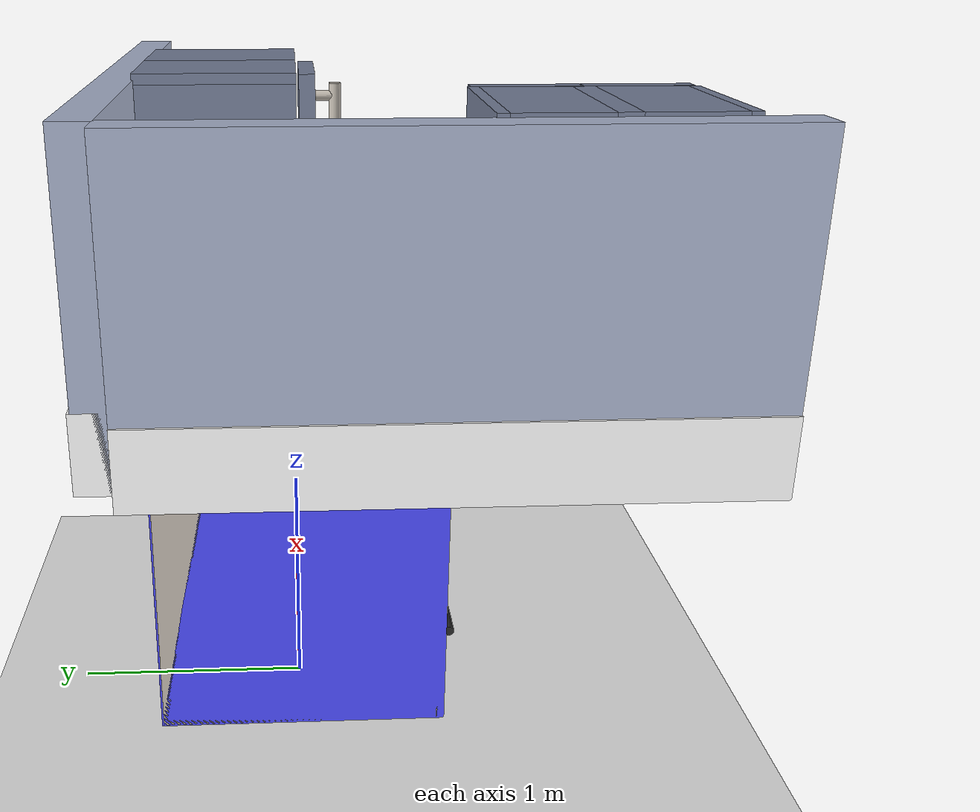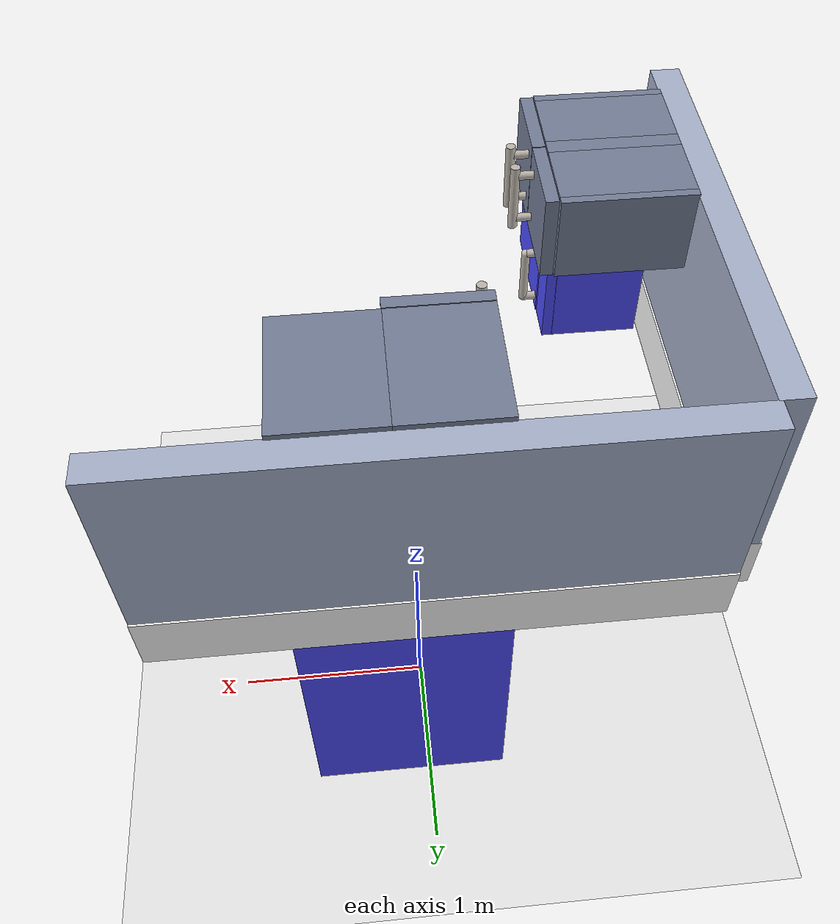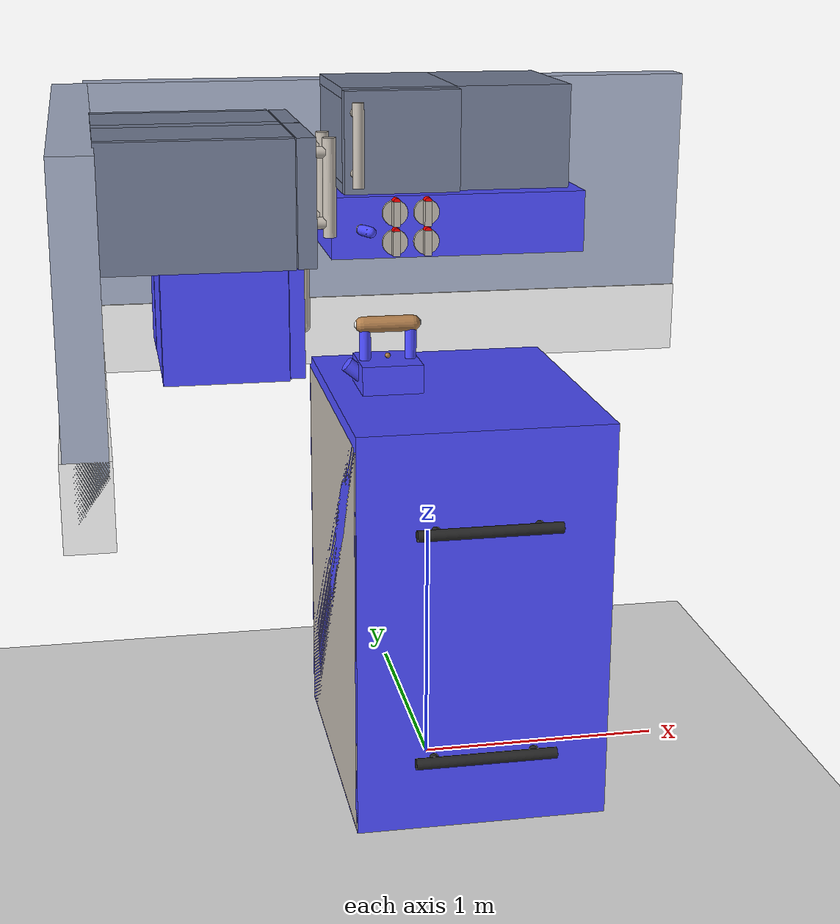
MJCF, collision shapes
<mujoco model="kitchen">
    <compiler angle="radian" inertiafromgeom='auto' inertiagrouprange='4 5'/>
    <include file='../scenes/basic_scene.xml'/>
    <include file="../kitchen/assets/oven_asset.xml"/>
    <include file="../kitchen/assets/counters_asset.xml"/>
    <include file="../kitchen/assets/backwall_asset.xml"/>
    <include file="../kitchen/assets/slidecabinet_asset.xml"/>
    <include file="../kitchen/assets/hingecabinet_asset.xml"/>
    <include file="../kitchen/assets/microwave_asset.xml"/>
    <include file="../kitchen/assets/kettle_asset.xml"/>
    <worldbody>
        <body name="kitchen" pos="0 0 0">
            <body name="oven" pos="0 0 0">
                <include file="../kitchen/assets/oven_chain.xml"/>
            </body>
            <body name="backwall" pos="0 0 0">
                <include file="../kitchen/assets/backwall_chain.xml"/>
            </body>
            <body name="slidecabinet" pos="0.098 0.28 2.61">
                <include file="../kitchen/assets/slidecabinet_chain.xml"/>
            </body>
            <body name="hingecabinet1" pos="-1.0 -1.0 2.6" euler="0 0 1.57">
                <include file="../kitchen/assets/hingecabinet_chain.xml"/>
            </body>
            <body name="microwave" pos="-0.892 -0.96 2.025" euler="0 0 1.57">
                <include file="../kitchen/assets/microwave_chain.xml"/>
            </body>
        </body>
        <body name="kettle" pos="-0.169 0 1.626">
            <freejoint/>
            <include file="../kitchen/assets/kettle_chain.xml"/>
        </body>
    </worldbody>

</mujoco>

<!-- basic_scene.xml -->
<mujocoinclude>
    <asset>
        <texture name="skybox" type="skybox" builtin="gradient" rgb1=".08 .09 .10" rgb2="0 0 0"
               width="800" height="800" mark="random" markrgb=".8 .8 .8"/>

        <texture name="texplane" type="2d" height="1" width="1" file="../scenes/textures/white_marble_tile2.png" />
        <material name='MatPlane' reflectance='0.05' texture="texplane" texrepeat="4 4" texuniform="true"/>
    </asset>

    <visual>
        <quality shadowsize="4048"/>
    </visual>

    <worldbody>
        <light directional='true' diffuse='.3 .3 .3' specular='0.3 0.3 0.3' pos='-1 -1 1' dir='1 1 -1'/>
        <light directional='true' diffuse='.3 .3 .3' specular='0.3 0.3 0.3' pos='1 -1 1' dir='-1 1 -1'/>
        <light directional='true' diffuse='.3 .3 .3' specular='0.3 0.3 0.3' pos='0 1 1' dir='0 -1 -1'/>
        <geom name='floor' pos='0 0 0' size='5 5 .1' conaffinity='1' contype='1' type='plane' material="MatPlane" condim='3'/>
        <site name='xaxis' pos='.5 0 0' size='.005 .5' type='capsule' rgba='1 0 0 .25' euler='0 1.57 0' group='3'/>
        <site name='yaxis' pos='0 .5 0' size='.005 .5' type='capsule' rgba='0 1 0 .25' euler='1.57 0 0' group='3'/>
    </worldbody>
</mujocoinclude>

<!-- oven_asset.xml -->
<mujocoinclude>

    <compiler inertiafromgeom="auto" inertiagrouprange="4 4" angle="radian"/>

    <asset>
        <mesh file="../kitchen/meshes/hood.stl" name="hood"/>
        <mesh file="../kitchen/meshes/lightswitch.stl" name="lightswitch"/>
        <mesh file="../kitchen/meshes/lightswitchbase.stl" name="lightswitchbase"/>
        <mesh file="../kitchen/meshes/knob.stl" name="knob"/>
        <mesh file="../kitchen/meshes/stoverim.stl" name="stoverim"/>
        <mesh file="../kitchen/meshes/burnerplate.stl" name="burnerplate"/>
        <mesh file="../kitchen/meshes/ovenhandle.stl" name="ovenhandle"/>
        <mesh file="../kitchen/meshes/oven.stl" name="oven"/>
        <mesh file="../kitchen/meshes/oventop.stl" name="oventop"/>
        <mesh file="../kitchen/meshes/ovenwindow.stl" name="ovenwindow"/>

        <texture name="T_oven_wood" type="cube" height="1" width="1" file="../kitchen/textures/wood1.png"/>
        <texture name="T_oven_metal" type="cube" height="1" width="1" file="../kitchen/textures/metal1.png"/>

        <material name="oven_wood" texture="T_oven_wood" texrepeat="3 3" reflectance="0.7" shininess=".4" texuniform="false"/>
        <material name="oven_metal" rgba="1 1 1 1" texture="T_oven_metal" texrepeat="3 3" reflectance="1" shininess="1" texuniform="false"/>
        <material name="oven_black" rgba=".15 .15 .15 1" reflectance=".2" shininess=".2" />
        <material name="oven_burner" rgba="2 0 0 1" reflectance=".2" shininess=".2" />
        <material name="oven_block" rgba=".1 .1 .1 1"/>
        <material name="oven_collision_blue" rgba="0.3 0.3 1.0 0.5" shininess="0" specular="0"/>
    </asset>
    <default>
        <default class="oven">
            <joint armature="0.001" damping="2" limited="true"/>
            <geom conaffinity="0" contype="0" group="1" material="oven_metal" type="mesh"/>
            <default class="ovenlight" >
                <light directional="false" castshadow="true" attenuation="0.03 0.03 0.03" cutoff="100" exponent="25" diffuse=".7 .65 .65" specular=".3 .3 .3"/>
            </default>
            <default class="oven_collision">
                <geom conaffinity="1" condim="3" contype="0" group="4" margin="0.001" material="oven_collision_blue" type="mesh"/>
            </default>
        </default>
    </default>

    <equality>
        <joint polycoef="0 174 0 0 0" joint1="knob_Joint_1" joint2="burner_Joint_1"/>
        <joint polycoef="0 174 0 0 0" joint1="knob_Joint_2" joint2="burner_Joint_2"/>
        <joint polycoef="0 174 0 0 0" joint1="knob_Joint_3" joint2="burner_Joint_3"/>
        <joint polycoef="0 174 0 0 0" joint1="knob_Joint_4" joint2="burner_Joint_4"/>
        <joint polycoef="0 14 0 0 0" joint1="lightswitch_joint" joint2="light_joint"/>
    </equality>

        <equality>
    </equality>
</mujocoinclude>

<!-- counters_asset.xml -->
<mujocoinclude>
    <compiler inertiafromgeom="auto" inertiagrouprange="4 4" angle="radian"/>

    <asset>
        <mesh file="../kitchen/meshes/cabinetdrawer.stl" name="cabinetdrawer"/>
        <mesh file="../kitchen/meshes/cabinethandle.stl" name="cabinethandle"/>
        <mesh file="../kitchen/meshes/cabinetbase.stl" name="cabinetbase"/>
        <mesh file="../kitchen/meshes/countertop.stl" name="countertop"/>
        <mesh file="../kitchen/meshes/faucet.stl" name="faucet"/>

        <texture name="T_counter_metal" type="cube" height="1" width="1" file="../kitchen/textures/metal1.png" />
        <texture name="T_counter_marble" type="cube" height="1" width="1" file="../kitchen/textures/marble1.png" />

        <material name="counter_metal" rgba="1 1 1 1" texture="T_counter_metal" texrepeat="3 3" reflectance=".5" shininess="1" texuniform="false" />
        <material name="counter_marble"  texture="T_counter_marble" texrepeat="1 1" reflectance=".2" shininess="1" texuniform="false" />
        <material name="counter_black" rgba=".2 .2 .2 1" reflectance="1" shininess="1"  />
        <material name="counter_blue" rgba=".46 .5 .6 1" reflectance="1" shininess="1"  />
        <material name="counter_collision_blue" rgba="0.3 0.3 1.0 0.5" shininess="0" specular="0" />

    </asset>

    <default>
        <default class="counters">
            <joint damping="2" frictionloss="2" armature=".01" limited="true"/>
            <geom conaffinity="0" contype="0" group="1" material="counter_metal" type="mesh"/>
            <default class="counter_collision">
                <geom conaffinity="1" condim="3" contype="0" group="4" margin="0.001" material="counter_collision_blue"/>
            </default>
        </default>
    </default>

</mujocoinclude>

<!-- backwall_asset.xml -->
<mujocoinclude>
    <compiler inertiafromgeom="auto" inertiagrouprange="4 4" angle="radian"/>

    <asset>
        <texture name="T_wall_marble" type="cube" height="1" width="1" file="../kitchen/textures/marble1.png"/>
        <texture name="T_wall_metal" type="cube" height="1" width="1" file="../kitchen/textures/metal1.png"/>

        <material name="wall_white" rgba="1 1 1 1" reflectance="0" shininess="0"/>
        <material name="wall_blue" rgba=".66 .7 .8 1" reflectance="0" shininess="0"/>
        <material name="wall_collision_blue" rgba="0.3 0.3 1.0 0.5" shininess="0" specular="0"/>
    </asset>
    <default>
        <default class="backwall">
            <geom conaffinity="0" contype="0" group="1" material="wall_blue"/>
            <default class="wall_collision">
                <geom conaffinity="1" condim="3" contype="0" group="4" margin="0.001" material="wall_collision_blue"/>
            </default>
        </default>
    </default>

</mujocoinclude>

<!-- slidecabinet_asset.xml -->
<mujocoinclude>

    <compiler inertiafromgeom="auto" inertiagrouprange="4 4" angle="radian"/>

    <asset>
        <texture name="T_slide_metal" type="cube" height="1" width="1" file="../kitchen/textures/metal1.png"/>

        <material name="M_slide_metal" texture="T_slide_metal" texrepeat="3 3" reflectance="0.7" shininess=".4" texuniform="false"/>
        <material name="M_slide_blue" rgba=".46 .5 .6 1" reflectance="0.7" shininess=".4"/>
        <material name="slide_collision_blue" rgba="0.3 0.3 1.0 0.5" shininess="0" specular="0"/>
    </asset>
    <default>
        <default class="slidecabinet">
            <joint damping="2" frictionloss="2" armature=".01" limited="true"/>
            <geom conaffinity="0" contype="0" group="1" material="M_slide_blue" type="mesh"/>
            <default class="slide_collision">
                <geom conaffinity="1" condim="3" contype="0" group="4" margin="0.001" material="slide_collision_blue"/>
            </default>
        </default>
    </default>

</mujocoinclude>

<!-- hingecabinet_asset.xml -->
<mujocoinclude>

    <compiler inertiafromgeom="auto" inertiagrouprange="4 4" angle="radian"/>

    <asset>
        <texture name="T_hinge_wood" type="cube" height="1" width="1" file="../kitchen/textures/wood1.png"/>
        <texture name="T_hinge_metal" type="cube" height="1" width="1" file="../kitchen/textures/metal1.png"/>

        <material name="M_hinge_wood" texture="T_hinge_wood" texrepeat="3 3" reflectance="0.7" shininess=".4" texuniform="false"/>
        <material name="M_hinge_metal" texture="T_hinge_metal" texrepeat="3 3" reflectance="0.7" shininess=".4" texuniform="false"/>
        <material name="M_hinge_blue" rgba=".46 .5 .6 1" reflectance="0.7" shininess=".4"/>
        <material name="hinge_collision_blue" rgba="0.3 0.3 1.0 0.5" shininess="0" specular="0"/>
    </asset>

    <default>
        <default class="hingecabinet">
            <joint damping="2" frictionloss="2" armature=".01" limited="true"/>
            <geom conaffinity="0" contype="0" group="1" material="M_hinge_wood" type="mesh"/>
            <default class="hinge_collision">
                <geom conaffinity="1" condim="3" contype="0" group="4" margin="0.001" material="hinge_collision_blue" solimp=".8 .9 .01" solref=".02 1"/>
            </default>
        </default>
    </default>

</mujocoinclude>

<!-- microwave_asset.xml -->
<mujocoinclude>

    <compiler inertiafromgeom="auto" inertiagrouprange="4 4" angle="radian"/>

    <asset>
        <mesh file="../kitchen/meshes/micro.stl" name="micro"/>
        <mesh file="../kitchen/meshes/microdoor.stl" name="microdoor"/>
        <mesh file="../kitchen/meshes/microbutton.stl" name="microbutton"/>
        <mesh file="../kitchen/meshes/microfeet.stl" name="microfeet"/>
        <mesh file="../kitchen/meshes/microhandle.stl" name="microhandle"/>
        <mesh file="../kitchen/meshes/microwindow.stl" name="microwindow"/>

        <texture name="T_micro_metal" type="cube" height="1" width="1" file="../kitchen/textures/metal1.png"/>

        <material name="micro_metal" rgba="1 1 1 1" texture="T_micro_metal" texrepeat="3 3" reflectance="1" shininess="1" texuniform="false"/>
        <material name="micro_black" rgba=".2 .2 .2 1" reflectance="1" shininess="1"/>
        <material name="micro_window" rgba=".4 .4 .4 .25" reflectance="1" shininess="1"/>
        <material name="micro_collision_blue" rgba="0.3 0.3 1.0 0.5" shininess="0" specular="0"/>
    </asset>

    <default>
        <default class="microwave">
            <joint damping="2" frictionloss="2" armature=".01" limited="true"/>
            <geom conaffinity="0" contype="0" group="1" material="micro_black" type="mesh"/>
            <default class="micro_collision">
                <geom conaffinity="1" condim="3" contype="0" group="4" margin="0.001" material="micro_collision_blue" solimp=".8 .9 .01" solref=".02 1"/>
            </default>
        </default>
    </default>

</mujocoinclude>

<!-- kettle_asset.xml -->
<mujocoinclude>
    <compiler inertiafromgeom="auto" inertiagrouprange="4 4" angle="radian"/>

    <asset>
        <mesh file="../kitchen/meshes/kettle.stl" name="kettle"/>
        <mesh file="../kitchen/meshes/kettlehandle.stl" name="kettlehandle"/>

        <texture name="T_kettle_metal" type="cube" height="1" width="1" file="../kitchen/textures/metal1.png" />
        <texture name="T_kettle_wood" type="cube" height="1" width="1" file="../kitchen/textures/wood1.png" />

        <material name="kettle_wood" rgba="1 1 1 1" texture="T_kettle_wood" texrepeat="3 3" reflectance="1" shininess="1" texuniform="false" />
        <material name="kettle_metal" rgba="1 1 1 1" texture="T_kettle_metal" texrepeat="3 3" reflectance="1" shininess="1" texuniform="false" />
        <material name="kettle_white" rgba=".9 .9 .9 1" reflectance="1" shininess="1" />
        <material name="kettle_collision_blue" rgba="0.3 0.3 1.0 0.5" shininess="0" specular="0" />
    </asset>
    <default class="kettle">
        <joint damping="2" frictionloss="2" armature=".01" limited="true" />
        <geom conaffinity="0" contype="0" group="1" material="kettle_white" type="mesh"/>
        <default class="kettle_collision">
            <geom conaffinity="1" condim="4" contype="1" group="4" margin="0.001" material="kettle_collision_blue" solimp=".8 .9 .01" solref=".02 1" type="mesh"/>
        </default>
    </default>
</mujocoinclude>

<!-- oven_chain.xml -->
<mujocoinclude>

    <light class="ovenlight" name="ovenlight" pos="0 .2 2.25" dir="0 -.02 -.1" attenuation="0.05 0.05 0.05" cutoff="75" diffuse=".7 .65 .65" specular=".3 .3 .3"/>

    <body name="ovenroot" childclass="oven" pos="0.115 -0.2921 0.9834">
        <geom material="oven_black" mesh="burnerplate" pos="-0.24 -0.119 0.629"/>
        <geom material="oven_black" mesh="burnerplate" pos="-0.237 0.322 0.629"/>
        <geom material="oven_black" mesh="burnerplate" pos="0.204 0.322 0.629"/>
        <geom material="oven_black" mesh="burnerplate" pos="0.206 -0.119 0.629"/>
        <geom material="oven_black" euler="1.57 0 0" pos="-.215 -0.36 -0.682" size="0.018 0.03" type="cylinder"/>
        <geom material="oven_black" euler="1.57 0 0" pos=".184 -0.36 -0.682" size="0.018 0.03" type="cylinder"/>
        <geom material="oven_black" euler="0 1.57 0" pos="-0.015 -0.39 -0.682" size="0.022 0.28" type="cylinder"/>
        <geom material="oven_black" euler="1.57 0 0" pos="-.215 -0.36 0.254" size="0.018 0.03" type="cylinder"/>
        <geom material="oven_black" euler="1.57 0 0" pos=".184 -0.36 0.254" size="0.018 0.03" type="cylinder"/>
        <geom material="oven_black" euler="0 1.57 0" pos="-0.015 -0.39 0.254" size="0.022 0.28" type="cylinder"/>
        <geom material="oven_black" mesh="oventop" pos="-0.017 0.275 0.607"/>
        <geom material="oven_black" mesh="ovenwindow" pos="0.9793 0.2921 -1.1877"/>
        <geom material="oven_black" pos="-0.011 -.327 -.05" size="0.35 0.016 0.22" type="box"/>
        <geom mesh="stoverim" pos="0.203 0.323 0.619"/>
        <geom mesh="stoverim" pos="-0.24 -0.12 0.619"/>
        <geom mesh="stoverim" pos="-0.237 0.323 0.619"/>
        <geom mesh="stoverim" pos="0.207 -0.12 0.619"/>
        <geom pos="-0.017 -.326 .455" size="0.5 0.016 0.12" type="box"/>
        <geom pos="-0.017 -.326 -.795" size="0.5 0.016 0.185" type="box"/>
        <geom pos="-0.017 -.326 -.14" size="0.5 0.016 0.465" type="box"/>
        <geom pos="-0.017 0.295 -0.2" size="0.5 0.602 0.78" type="box"/>

        <geom class="oven_collision" pos="-0.017 0.28 -0.175" size="0.5 0.625 0.81" type="box" mass="5"/>
        <geom class="oven_collision" euler="1.57 0 0" pos="-.215 -0.36 -0.682" size="0.018 0.03" type="cylinder" mass=".2"/>
        <geom class="oven_collision" euler="1.57 0 0" pos=".184 -0.36 -0.682" size="0.018 0.03" type="cylinder" mass=".2"/>
        <geom class="oven_collision" euler="0 1.57 0" pos="-0.015 -0.39 -0.682" size="0.022 0.28" type="cylinder" mass=".2"/>
        <geom class="oven_collision" euler="1.57 0 0" pos="-.215 -0.36 0.254" size="0.018 0.03" type="cylinder" mass=".2"/>
        <geom class="oven_collision" euler="1.57 0 0" pos=".184 -0.36 0.254" size="0.018 0.03" type="cylinder" mass=".2"/>
        <geom class="oven_collision" euler="0 1.57 0" pos="-0.015 -0.39 0.254" size="0.022 0.28" type="cylinder" mass=".2"/>
        <body name="knob 1" euler="1.57 0 0" pos="-0.148 0.22 1.243">
            <joint name="knob_Joint_1" axis="0 0 1" type="hinge" limited="true" range="-1.57 0"/>
            <geom type="box" pos="0 0 .038" size=".014 .048 .018"/>
            <geom type="cylinder" pos="0 0 .013" size=".05 .008"/>
            <geom type="cylinder" pos="0 0.048 .037" size=".014 .018" rgba="1 0 0 1"/>

            <geom class="oven_collision" type="box" pos="0 0 .038" size=".014 .048 .018" mass=".01"/>
            <geom class="oven_collision" type="cylinder" pos="0 0 .013" size=".05 .008" mass=".01"/>
            <site type="sphere" name="knob1_site" pos="0 0 .038" size=".01" group="3" rgba="1 1 0 1"/>
        </body>
        <body name="Burner 1" pos="0.206 -0.119 0.61">
            <inertial pos="0 0 0" mass=".01" diaginertia="0.001 0.001 0.001"/>
            <joint name="burner_Joint_1" axis="0 0 -1" type="slide" limited="true" range="-.009 0"/>
            <geom material="oven_burner" size="0.1 0.01" type="cylinder"/>
        </body>
        <body name="knob 2" euler="1.57 0 0" pos="-0.271 0.22 1.243">
            <joint name="knob_Joint_2" axis="0 0 1" type="hinge" limited="true" range="-1.57 0"/>
            <geom type="box" pos="0 0 .038" size=".014 .048 .018"/>
            <geom type="cylinder" pos="0 0 .013" size=".05 .008"/>
            <geom type="cylinder" pos="0 0.048 .037" size=".014 .018" rgba="1 0 0 1"/>

            <geom class="oven_collision" type="box" pos="0 0 .038" size=".014 .048 .018" mass=".01"/>
            <geom class="oven_collision" type="cylinder" pos="0 0 .013" size=".05 .008" mass=".01"/>
            <site type="sphere" name="knob2_site" pos="0 0 .038" size=".01" group="3" rgba="0 0 1 1"/>
        </body>
        <body name="Burner 2" pos="-0.24 -0.119 0.61">
            <inertial pos="0 0 0" mass=".01" diaginertia="0.001 0.001 0.001"/>
            <joint name="burner_Joint_2" axis="0 0 -1" type="slide" limited="true" stiffness="1" range="-.009 0"/>
            <geom material="oven_burner" size="0.1 0.01" type="cylinder" group="1"/>
        </body>
        <body name="knob 3" euler="1.57 0 0" pos="-0.148 0.22 1.357">
            <joint name="knob_Joint_3" axis="0 0 1" type="hinge" limited="true" range="-1.57 0"/>
            <geom type="box" pos="0 0 .038" size=".014 .048 .018"/>
            <geom type="cylinder" pos="0 0 .013" size=".05 .008"/>
            <geom type="cylinder" pos="0 0.048 .037" size=".014 .018" rgba="1 0 0 1"/>

            <geom class="oven_collision" type="box" pos="0 0 .038" size=".014 .048 .018" mass=".01"/>
            <geom class="oven_collision" type="cylinder" pos="0 0 .013" size=".05 .008" mass=".01"/>
            <site type="sphere" name="knob3_site" pos="0 0 .038" size=".01" group="3" rgba="0 1 0 1"/>
        </body>
        <body name="Burner 3" pos="0.204 0.322 0.61">
            <inertial pos="0 0 0" mass=".01" diaginertia="0.001 0.001 0.001"/>
            <joint name="burner_Joint_3" axis="0 0 -1" type="slide" limited="true" stiffness="1" range="-.009 0"/>
            <geom material="oven_burner" size="0.1 0.01" type="cylinder" group="1"/>
        </body>
        <body name="knob 4" euler="1.57 0 0" pos="-0.271 0.22 1.357">
            <joint name="knob_Joint_4" axis="0 0 1" type="hinge" limited="true" range="-1.57 0"/>
            <geom type="box" pos="0 0 .038" size=".014 .048 .018"/>
            <geom type="cylinder" pos="0 0 .013" size=".05 .008"/>
            <geom type="cylinder" pos="0 0.048 .037" size=".014 .018" rgba="1 0 0 1"/>

            <geom class="oven_collision" type="box" pos="0 0 .038" size=".014 .048 .018" mass=".01"/>
            <geom class="oven_collision" type="cylinder" pos="0 0 .013" size=".05 .008" mass=".01"/>
            <site type="sphere" name="knob4_site" pos="0 0 .038" size=".01" group="3" rgba="1 0 0 1"/>
        </body>
        <body name="Burner 4" pos="-0.237 0.322 0.61">
            <inertial pos="0 0 0" mass=".01" diaginertia="0.001 0.001 0.001"/>
            <joint name="burner_Joint_4" axis="0 0 -1" type="slide" limited="true" stiffness="1" range="-.009 0"/>
            <geom material="oven_burner" size="0.1 0.01" type="cylinder" group="1"/>
        </body>
    </body>
    <body name="hoodroot" pos="0.1 0.188 2.33" childclass="oven">
        <geom material="oven_black" mesh="hood" pos="-0.1 -0.2896 -2.329"/>
        <geom class="oven_collision" pos="0 0.073 -0.046" size="0.502 0.336 0.12" type="box" mass="2"/>
        <body name="lightswitchbaseroot" pos="-0.4 -0.2473 -0.05" >
            <geom mesh="lightswitchbase" pos="0 -0.0123 0" euler="-1.57 0 0"/>
            <body name="lightswitchroot">
                <inertial pos="-0.0046 0.35 0.0131" mass=".1" diaginertia="0.001 0.001 0.001"/>
                <joint axis="0 0 1" limited="true" name="lightswitch_joint" frictionloss="1" range="-.7 0"/>
                <geom pos="0.0252 -0.06 0" euler="-1.57 -.4 0" size="0.02 0.035" type="capsule"/>
                <geom class="oven_collision" euler="-1.57 -.4 0" pos="0.0263 -0.065 0" size="0.021 0.03" type="capsule" mass=".01"/>
                <site type="sphere" name="light_site" pos="0.0315 -0.075 0" size=".01" group="3" rgba="1 0 0 1"/>
            </body>
        </body>
        <body name="lightblock_hinge" pos="-0.0044 -0.3 -0.1361">
            <inertial pos="-0.0046 0.35 0.0131" mass=".01" diaginertia="0.001 0.001 0.001"/>
            <joint axis="0 0 -1" type="slide" limited="true" name="light_joint" frictionloss="1" range="-.05 0"/>
            <geom material="oven_block" pos="-0.008 0.4 -0.01" size="0.4 0.3 0.015" type="box"/>
        </body>
    </body>
</mujocoinclude>

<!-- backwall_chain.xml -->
<mujocoinclude>
    <body name="wallroot" childclass="backwall" pos="0.059 0.584 1.587">
        <geom pos="-.11 0.06 .6" size="1.26 0.07 0.6" type="box"/>
        <geom material="wall_white" pos="-0.11 0.06 0.145" size="1.26 0.08 0.145" type="box"/>

        <geom class="wall_collision" pos="-.11 0.06 .6" size="1.26 0.07 0.6" type="box" mass=".2"/>
        <geom class="wall_collision" pos="-0.11 0.06 0.145" size="1.26 0.08 0.145" type="box" mass=".2"/>
    </body>
    <body euler="0 0 1.57" name="wall2" childclass="backwall" pos="-1.305 -0.546 1.587">
        <geom pos="0.044 .06 0.6" size="1.079 0.07 0.6" type="box"/>
        <geom material="wall_white" pos="0.044 .06 0.145" size="1.079 0.08 0.145" type="box"/>

        <geom class="wall_collision" pos="0.044 .06 0.6" size="1.079 0.07 0.6" type="box" mass=".2"/>
        <geom class="wall_collision" pos="0.044 .06 0.145" size="1.079 0.08 0.145" type="box" mass=".2"/>
    </body>
</mujocoinclude>

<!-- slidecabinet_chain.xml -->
<mujocoinclude>
    <body name="slide" childclass="slidecabinet">
        <geom pos="-0.225 0 -0.18" size="0.223 0.3 0.02" type="box"/>
        <geom pos="0.224 0 0" size="0.226 0.3 0.2" type="box"/>
        <geom pos="-0.225 0 0.18" size="0.223 0.3 0.02" type="box"/>
        <geom pos="-0.426 0 0" size="0.022 0.3 0.16" type="box"/>
        <geom pos="-0.2 0.276 0.0" size="0.21 0.024 0.16" type="box"/>

        <geom class="slide_collision" pos="-0.225 0 -0.18" size="0.223 0.3 0.02" type="box" mass=".2"/>
        <geom class="slide_collision" pos="0.224 0 0" size="0.226 0.3 0.2" type="box" mass="1"/>
        <geom class="slide_collision" pos="-0.225 0 0.18" size="0.223 0.3 0.02" type="box" mass=".2"/>
        <geom class="slide_collision" pos="-0.426 0 0" size="0.022 0.3 0.16" type="box" mass=".2"/>
        <geom class="slide_collision" pos="-0.2 0.276 0" size="0.2 0.024 0.16" type="box" mass=".2"/>
        <body name="slidelink" pos="-0.225 -0.32 0">
            <joint name="slidedoor_joint" axis="1 0 0" type="slide" range="0 .44"/>
            <geom material="M_slide_metal" euler="1.57 0 0" pos="-0.183 -0.06 -0.114" size="0.019 0.053 0.019" type="cylinder"/>
            <geom material="M_slide_metal" euler="1.57 0 0" pos="-0.183 -0.06 0.114" size="0.019 0.053 0.019" type="cylinder"/>
            <geom material="M_slide_metal" pos="-0.183 -0.123 0" size="0.022 0.159" type="cylinder"/>
            <geom pos="0 -.02 0" size="0.225 0.03 0.195" type="box"/>

            <geom class="slide_collision" pos="0 -.02 0" size="0.225 0.03 0.195" type="box" mass=".2"/>
            <geom class="slide_collision" euler="1.57 0 0" pos="-0.183 -0.06 -0.114" size="0.019 0.053 0.019" type="cylinder" mass=".02"/>
            <geom class="slide_collision" euler="1.57 0 0" pos="-0.183 -0.06 0.114" size="0.019 0.053 0.019" type="cylinder" mass=".02"/>
            <geom class="slide_collision" pos="-0.183 -0.123 0" size="0.022 0.159" type="cylinder" mass=".1"/>
            <site type="sphere" name="slide_site" pos="-0.183 -0.123 0" size=".01" group="3"/>
        </body>
    </body>
</mujocoinclude>

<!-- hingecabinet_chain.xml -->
<mujocoinclude>
    <body name="hingecab" childclass="hingecabinet">
        <geom material="M_hinge_blue" size="0.04 0.3 0.2" type="box"/>
        <geom material="M_hinge_blue" pos="0.38 0 0" size="0.02 0.3 0.2" type="box"/>
        <geom material="M_hinge_blue" pos="-0.38 0 0" size="0.02 0.3 0.2" type="box"/>
        <geom material="M_hinge_blue" pos="-0.2 0 0.18" size="0.16 0.3 0.02" type="box"/>
        <geom material="M_hinge_blue" pos="-0.2 0 -0.18" size="0.16 0.3 0.02" type="box"/>
        <geom material="M_hinge_blue" pos="0.2 0 -0.18" size="0.16 0.3 0.02" type="box"/>
        <geom material="M_hinge_blue" pos="0.2 0 0.18" size="0.16 0.3 0.02" type="box"/>
        <geom material="M_hinge_blue" pos="-0.2 0.28 0" size="0.16 0.02 0.16" type="box"/>
        <geom material="M_hinge_blue" pos="0.2 0.28 0" size="0.16 0.02 0.16" type="box"/>

        <geom class="hinge_collision" size="0.04 0.3 0.2" type="box" mass=".3"/>
        <geom class="hinge_collision" pos="0.38 0 0" size="0.02 0.3 0.2" type="box" mass=".2"/>
        <geom class="hinge_collision" pos="-0.38 0 0" size="0.02 0.3 0.2" type="box" mass=".2"/>
        <geom class="hinge_collision" pos="-0.2 0 0.18" size="0.16 0.3 0.02" type="box" mass=".2"/>
        <geom class="hinge_collision" pos="-0.2 0 -0.18" size="0.16 0.3 0.02" type="box" mass=".2"/>
        <geom class="hinge_collision" pos="0.2 0 -0.18" size="0.16 0.3 0.02" type="box" mass=".2"/>
        <geom class="hinge_collision" pos="0.2 0 0.18" size="0.16 0.3 0.02" type="box" mass=".2"/>
        <geom class="hinge_collision" pos="-0.2 0.28 0" size="0.16 0.02 0.16" type="box" mass=".2"/>
        <geom class="hinge_collision" pos="0.2 0.28 0" size="0.16 0.02 0.16" type="box" mass=".2"/>
        <body name="hingeleftdoor" pos="-0.38 -0.32 0">
            <joint axis="0 0 1" name="leftdoorhinge" range="-1.57 0"/>
            <geom material="M_hinge_metal" pos="0.302 -0.128 0" size="0.022 0.16" type="cylinder"/>
            <geom material="M_hinge_metal" pos="0.302 -0.061 0.114" euler="1.57 0 0" size="0.019 0.053 0.02" type="cylinder"/>
            <geom material="M_hinge_metal" pos="0.302 -0.061 -0.114" euler="1.57 0 0" size="0.019 0.053 0.02" type="cylinder"/>
            <geom material="M_hinge_blue" pos="0.184 -.015 0" size="0.193 0.03 0.2" type="box"/>

            <geom class="hinge_collision" pos="0.184 -.015 0" size="0.193 0.03 0.2" type="box" mass=".2"/>
            <geom class="hinge_collision" pos="0.302 -0.128 0" size="0.022 0.16" type="cylinder" mass=".1"/>
            <geom class="hinge_collision" pos="0.302 -0.061 0.114" euler="1.57 0 0" size="0.019 0.053 0.02" type="cylinder" mass=".02"/>
            <geom class="hinge_collision" pos="0.302 -0.061 -0.114" euler="1.57 0 0" size="0.019 0.053 0.02" type="cylinder" mass=".02"/>
            <site type="sphere" name="hinge_site1" pos="0.302 -0.128 0" size=".01" group="3" rgba="1 0 0 1"/>
        </body>
        <body name="hingerightdoor" pos="0.38 -0.32 0">
            <joint axis="0 0 1" name="rightdoorhinge" range="0 1.57"/>
            <geom material="M_hinge_blue" pos="-0.185 -.015 0" size="0.193 0.03 0.2" type="box"/>
            <geom material="M_hinge_metal" pos="-0.302 -0.128 0" size="0.022 0.16" type="cylinder"/>
            <geom material="M_hinge_metal" pos="-0.302 -0.061 -0.114" euler="1.57 0 0" size="0.019 0.053 0.02" type="cylinder"/>
            <geom material="M_hinge_metal" pos="-0.302 -0.061 0.114" euler="1.57 0 0" size="0.019 0.053 0.02" type="cylinder"/>

            <geom class="hinge_collision" pos="-0.302 -0.128 0" size="0.022 0.16" type="cylinder" mass=".1"/>
            <geom class="hinge_collision" pos="-0.302 -0.061 -0.114" euler="1.57 0 0" size="0.019 0.053 0.02" type="cylinder" mass=".02"/>
            <geom class="hinge_collision" pos="-0.302 -0.061 0.114" euler="1.57 0 0" size="0.019 0.053 0.02" type="cylinder" mass=".02"/>
            <geom class="hinge_collision" pos="-0.185 -.015 0" size="0.193 0.03 0.2" type="box" mass=".2"/>
            <site type="sphere" name="hinge_site2" pos="-0.302 -0.128 0" size=".01" group="3" rgba="0 1 0 1"/>
        </body>
    </body>
</mujocoinclude>

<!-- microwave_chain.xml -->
<mujocoinclude>
    <body name="microroot" childclass="microwave">
        <geom mesh="micro"/>
        <geom material="micro_metal" mesh="microbutton"/>
        <geom material="micro_metal" mesh="microfeet"/>

        <geom class="micro_collision" pos="-0.316 0.023 0.187" size="0.029 0.199 0.187" type="box" mass=".5"/>
        <geom class="micro_collision" pos="0.236 0.023 0.187" size="0.109 0.199 0.187" type="box" mass=".5"/>
        <geom class="micro_collision" pos="-0.081 0.191 0.187" size="0.207 0.03 0.187" type="box" mass=".5"/>
        <geom class="micro_collision" pos="-0.08 -0.007 0.355" size="0.207 0.169 0.019" type="box" mass=".5"/>
        <geom class="micro_collision" pos="-0.08 -0.008 0.024" size="0.207 0.168 0.024" type="box" mass=".5"/>
        <geom class="micro_collision" pos="0.26 -0.197 0.187" size="0.085 0.024 0.187" type="box" mass=".5"/>
        <body name="microdoorroot" pos="-0.345 -0.176 0.192">
            <joint axis="0 0 1" limited="true" name="microjoint" range="-2.094 0"/>
            <geom mesh="microdoor" pos="0.345 0.176 -0.192"/>
            <geom material="micro_window" mesh="microwindow" pos="0.345 0.176 -0.192"/>
            <geom material="micro_metal" pos="0.475 -0.108 0" size="0.02 0.13" type="capsule"/>
            <geom material="micro_metal" euler="1.57 0 0" pos="0.475 -0.075 .13" size="0.02 0.03" type="capsule"/>
            <geom material="micro_metal" euler="1.57 0 0" pos="0.475 -0.075 -.13" size="0.02 0.03" type="capsule"/>

            <geom class="micro_collision" pos="0.475 -0.108 0" size="0.02 0.13" type="capsule" mass="0.020"/>
            <geom class="micro_collision" euler="1.57 0 0" pos="0.475 -0.075 .13" size="0.02 0.03" type="capsule" mass="0.020"/>
            <geom class="micro_collision" euler="1.57 0 0" pos="0.475 -0.075 -.13" size="0.02 0.03" type="capsule" mass="0.020"/>
            <geom class="micro_collision" pos="0.259 -0.026 0" size="0.259 0.024 0.185" type="box" mass="0.20"/>
            <site type="sphere" name="microhandle_site" pos="0.475 -0.108 0" size=".01" group="3" rgba="1 1 0 1"/>
        </body>
    </body>
</mujocoinclude>

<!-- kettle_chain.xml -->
<mujocoinclude>

    <body name="kettleroot" childclass="kettle">
        <geom mesh="kettle"/>
        <geom material="kettle_wood" euler="0 1.57 0" pos="0 0 0.259" size="0.032 0.1" type="capsule"/>
        <geom material="kettle_wood" euler="0 1.57 0" pos="0 0 0.13" size="0.011" type="sphere"/>
        <geom euler="0 1.57 0" pos="0 0 0.259" size="0.02 0.115" type="capsule"/>
        <geom pos="0.092 0 0.186" size="0.02 0.07" type="capsule"/>
        <geom pos="-0.092 0 0.185" size="0.02 0.07" type="capsule"/>
        <geom material="kettle_wood" pos="-0.092 0 0.22" size="0.022 0.015" type="capsule"/>
        <geom material="kettle_wood" pos="0.092 0 0.22" size="0.022 0.015" type="capsule"/>

        <geom class="kettle_collision" euler="0 1.57 0" pos="0 0 0.259" size="0.032 0.1" type="capsule" mass='.02'/>
        <geom class="kettle_collision" pos="0.092 0 0.18" size="0.023 0.06" type="capsule" mass='.02'/>
        <geom class="kettle_collision" pos="-0.092 0 0.18" size="0.023 0.06" type="capsule" mass='.02'/>
        <geom class="kettle_collision" euler="0 2.25 0" pos="-0.126 0 0.07" size="0.031 0.05" type="cylinder" mass='.02'/>
        <geom class="kettle_collision" pos="0 0 0.058" size="0.122 0.122 0.058" type="box" mass='.8'/>
        <site type="sphere" name="kettle_site" pos="0 0 0.259" size=".01" group="3" rgba="1 0 0 1"/>
    </body>
</mujocoinclude>
